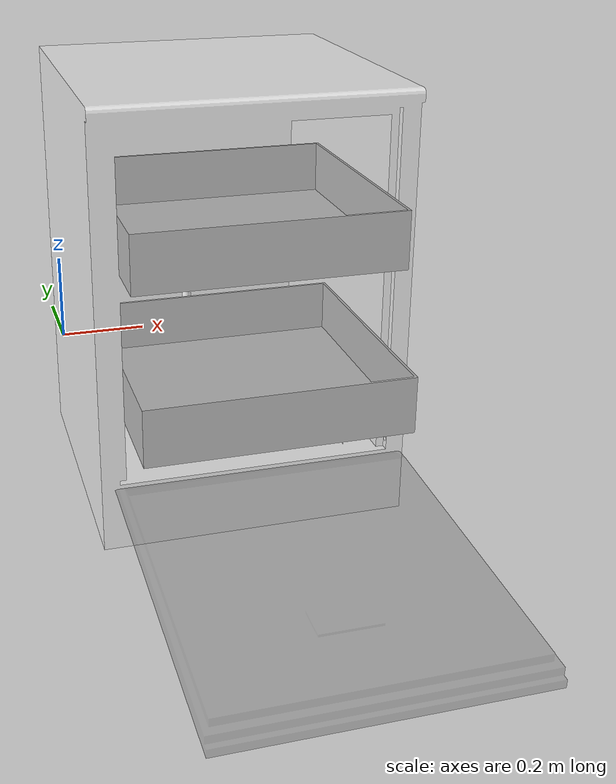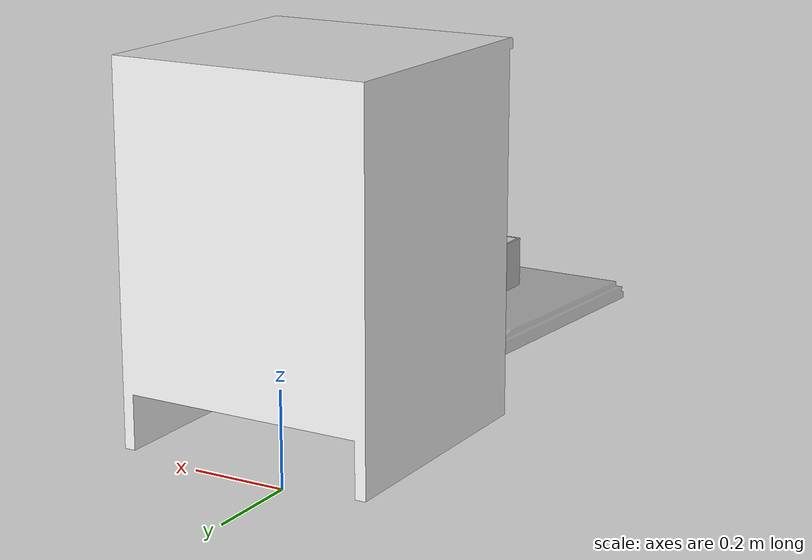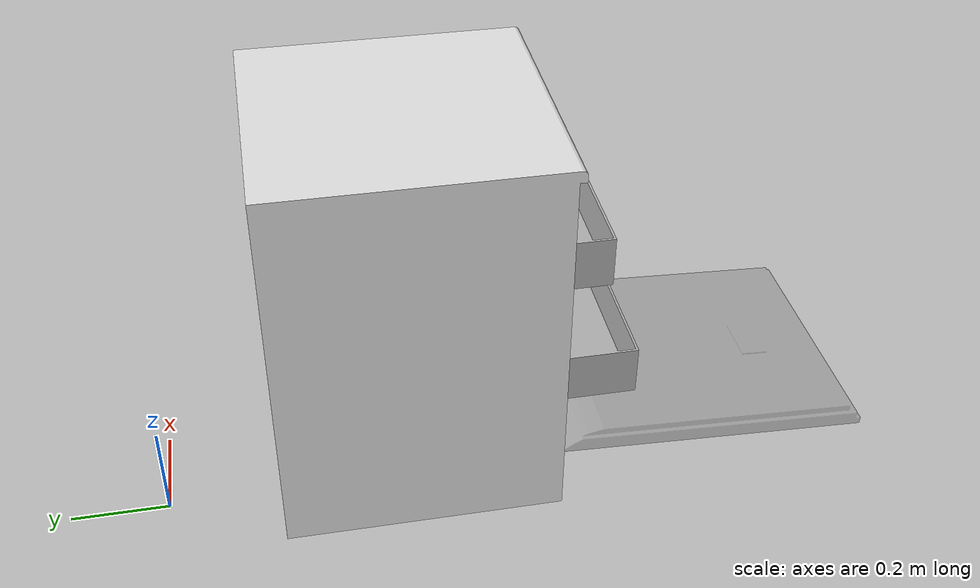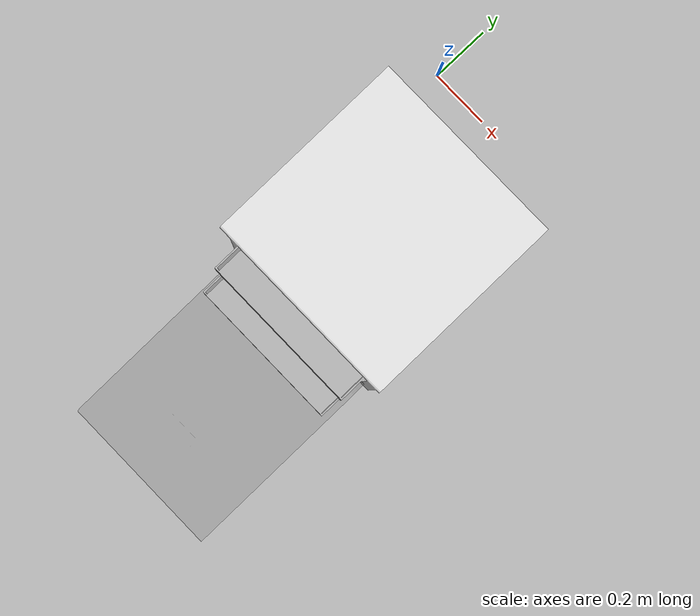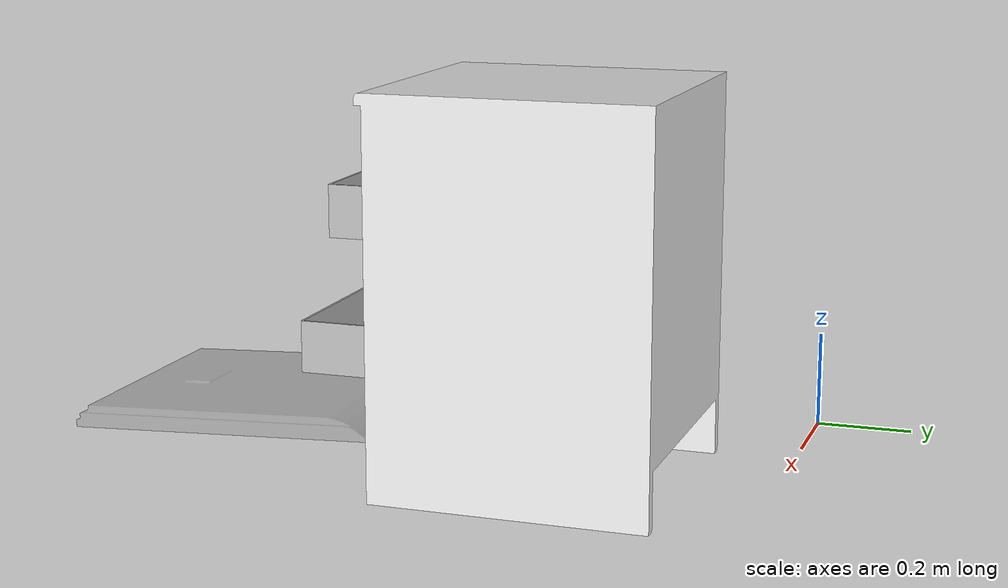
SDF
<sdf version='1.6'>
  <model name='dishwasher'>
    <link name='base_link'>
      <pose frame=''>0 0 0 0 -0 0</pose>
      <inertial>
        <pose frame=''>0.255475 -0.516726 0.405314 0 -0 0</pose>
        <mass>580.455</mass>
        <inertia>
          <ixx>48.972</ixx>
          <ixy>0.0155073</ixy>
          <ixz>-0.0368902</ixz>
          <iyy>62.7974</iyy>
          <iyz>-0.752361</iyz>
          <izz>52.0235</izz>
        </inertia>
      </inertial>
      <collision name='base_link_collision'>
        <pose frame=''>0 0 0 0 -0 0</pose>
        <geometry>
          <mesh>
            <scale>1 1 1</scale>
            <uri>model://dishwasher4/meshes/base_link.STL</uri>
          </mesh>
        </geometry>
      </collision>
      <visual name='base_link_visual'>
        <pose frame=''>0 0 0 0 -0 0</pose>
        <geometry>
          <mesh>
            <scale>1 1 1</scale>
            <uri>model://dishwasher4/meshes/base_link.STL</uri>
          </mesh>
        </geometry>
        <material>
          <script>
            <uri>file://media/materials/scripts/gazebo.material</uri>
            <name>Gazebo/White</name>
          </script>
        </material>
      </visual>
    </link>
    <link name='door_link'>
      <pose frame=''>0 -0.832302 0.027045 -1.5708 -1.52453 -1.5708</pose>
      <inertial>
        <pose frame=''>0.021615 0.357444 0.255716 0 -0 0</pose>
        <mass>126.317</mass>
        <inertia>
          <ixx>7.49698</ixx>
          <ixy>-0.0125732</ixy>
          <ixz>0.000282137</ixz>
          <iyy>3.12594</iyy>
          <iyz>-0.00237021</iyz>
          <izz>4.41323</izz>
        </inertia>
      </inertial>
      <collision name='door_link_collision'>
        <pose frame=''>0 0 0 0 -0 0</pose>
        <geometry>
          <mesh>
            <scale>1 1 1</scale>
            <uri>model://dishwasher4/meshes/door_link.STL</uri>
          </mesh>
        </geometry>
      </collision>
      <visual name='door_link_visual'>
        <pose frame=''>0 0 0 0 -0 0</pose>
        <geometry>
          <mesh>
            <scale>1 1 1</scale>
            <uri>model://dishwasher4/meshes/door_link.STL</uri>
          </mesh>
        </geometry>
        <material>
          <script>
            <uri>file://media/materials/scripts/gazebo.material</uri>
            <name>Gazebo/GreyTransparent</name>
          </script>
        </material>
      </visual>
    </link>
    <joint name='door_joint' type='revolute'>
      <child>door_link</child>
      <parent>base_link</parent>
      <axis>
        <xyz>1 -0 -0</xyz>
        <limit>
          <lower>-1e+16</lower>
          <upper>1e+16</upper>
        </limit>
        <dynamics>
          <spring_reference>0</spring_reference>
          <spring_stiffness>0</spring_stiffness>
        </dynamics>
        <use_parent_model_frame>1</use_parent_model_frame>
      </axis>
    </joint>
    <link name='lower_basket_link'>
      <pose frame=''>0.505658 -0.550856 0.135045 1.5708 -0 0</pose>
      <inertial>
        <pose frame=''>-0.25 0.042602 0.193373 0 -0 0</pose>
        <mass>3.49</mass>
        <inertia>
          <ixx>0.0955077</ixx>
          <ixy>8.56464e-17</ixy>
          <ixz>-1.56764e-16</ixz>
          <iyy>0.185033</iyy>
          <iyz>8.11054e-18</iyz>
          <izz>0.0955077</izz>
        </inertia>
      </inertial>
      <collision name='lower_basket_link_collision'>
        <pose frame=''>0 0 0 0 -0 0</pose>
        <geometry>
          <mesh>
            <scale>1 1 1</scale>
            <uri>model://dishwasher4/meshes/lower_basket_link.dae</uri>
          </mesh>
        </geometry>
      </collision>
      <visual name='lower_basket_link_visual'>
        <pose frame=''>0 0 0 0 -0 0</pose>
        <geometry>
          <mesh>
            <scale>1 1 1</scale>
            <uri>model://dishwasher4/meshes/lower_basket_link.dae</uri>
          </mesh>
        </geometry>
      <material>
        <script>
         <uri>model://dishwasher4/materials/scripts</uri>
         <uri>model://dishwasher4/materials/textures</uri>
          <name>MetalBasket</name>
        </script>
      </material>
      </visual>
    </link>
    <joint name='lower_basket_joint' type='prismatic'>
      <child>lower_basket_link</child>
      <parent>base_link</parent>
      <axis>
        <xyz>0 -1 -0</xyz>
        <limit>
          <lower>-0.1</lower>
          <upper>0.6</upper>
          <effort>10</effort>
          <velocity>10</velocity>
        </limit>
        <dynamics>
          <spring_reference>0</spring_reference>
          <spring_stiffness>0</spring_stiffness>
        </dynamics>
        <use_parent_model_frame>1</use_parent_model_frame>
      </axis>
    </joint>
    <link name='upper_basket_link'>
      <pose frame=''>0.505658 -0.679426 0.425045 1.5708 -0 0</pose>
      <inertial>
        <pose frame=''>-0.25 0.042602 -0.002466 0 -0 0</pose>
        <mass>3.49</mass>
        <inertia>
          <ixx>0.0955077</ixx>
          <ixy>8.56508e-17</ixy>
          <ixz>-1.56764e-16</ixz>
          <iyy>0.185033</iyy>
          <iyz>2.1346e-18</iyz>
          <izz>0.0955077</izz>
        </inertia>
      </inertial>
      <collision name='upper_basket_link_collision'>
        <pose frame=''>0 0 0 0 -0 0</pose>
        <geometry>
          <mesh>
            <scale>1 1 1</scale>
            <uri>model://dishwasher4/meshes/upper_basket_link.dae</uri>
          </mesh>
        </geometry>
        <surface>
        <friction>
          <ode>
            <mu>0.1</mu>
            <mu2>0.1</mu2>
          </ode>
        </friction>
      </surface>
      </collision>
      <visual name='upper_basket_link_visual'>
        <pose frame=''>0 0 0 0 -0 0</pose>
        <geometry>
          <mesh>
            <scale>1 1 1</scale>
            <uri>model://dishwasher4/meshes/upper_basket_link.dae</uri>
          </mesh>
        </geometry>

      <material>
        <script>
         <uri>model://dishwasher4/materials/scripts</uri>
         <uri>model://dishwasher4/materials/textures</uri>
          <name>MetalBasket</name>
        </script>
      </material>

      </visual>
    </link>
    <joint name='upper_basket_joint' type='prismatic'>
      <child>upper_basket_link</child>
      <parent>base_link</parent>
      <axis>
        <xyz>0 -1 -0</xyz>
        <limit>
          <lower>-0.1</lower>
          <upper>0.4</upper>
          <effort>10</effort>
          <velocity>10</velocity>
        </limit>
        <dynamics>
          <spring_reference>0</spring_reference>
          <spring_stiffness>0</spring_stiffness>
        </dynamics>
        <use_parent_model_frame>1</use_parent_model_frame>
      </axis>
    </joint>

    <plugin name='gazebo_ros_control' filename='libgazebo_ros_control.so'>
      <legacyModeNS>true</legacyModeNS>
    </plugin>
  </model>
</sdf>
